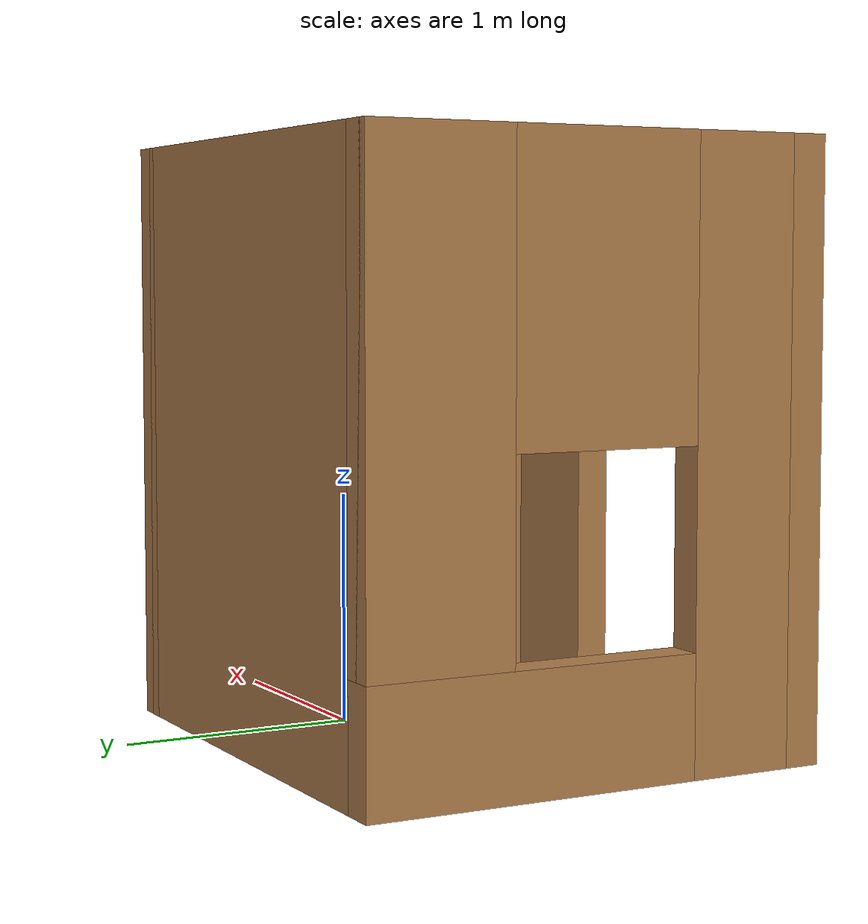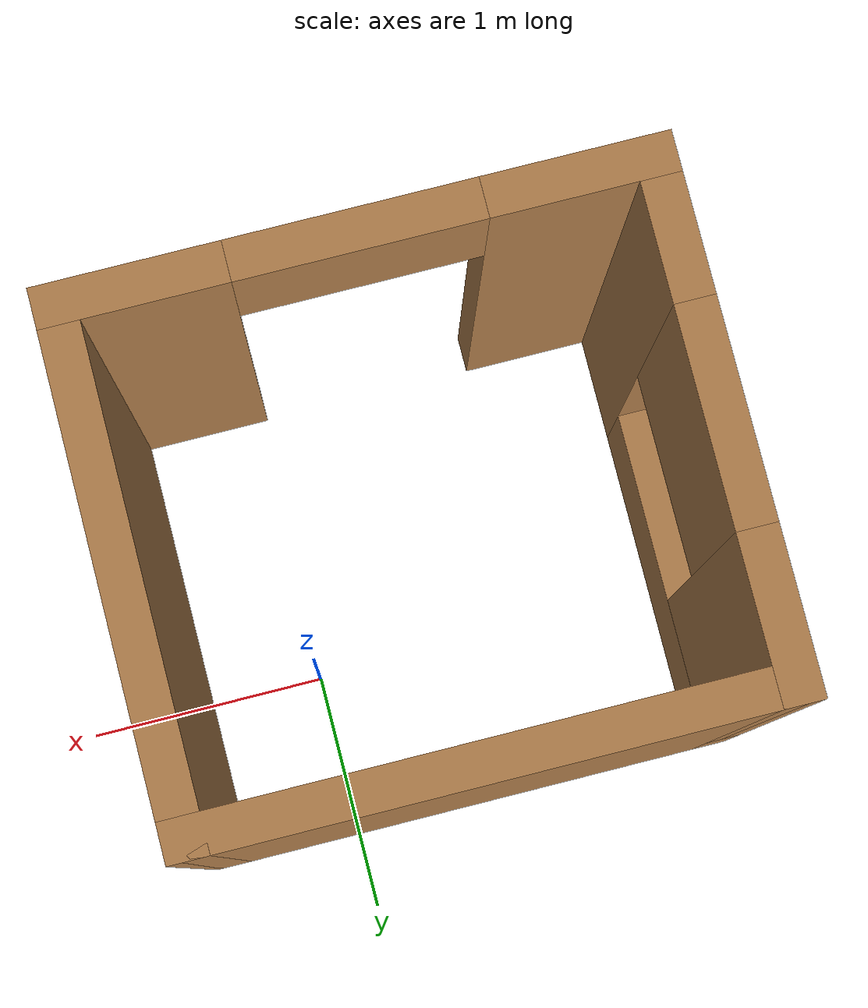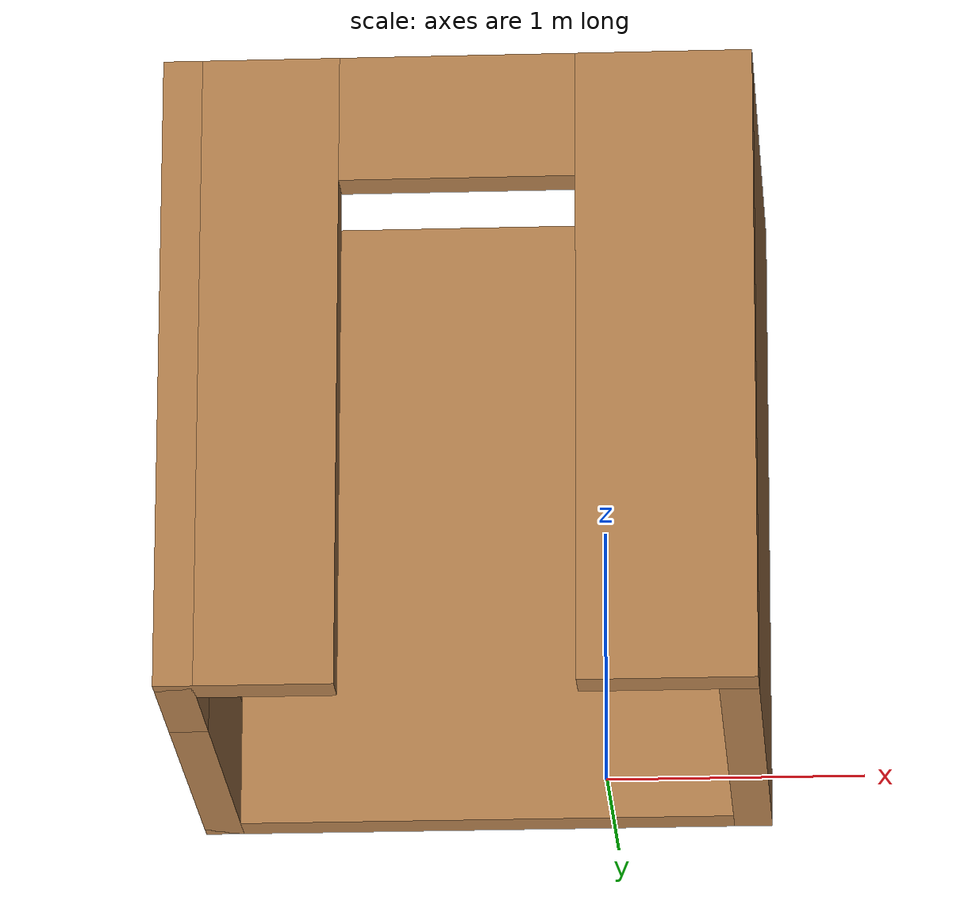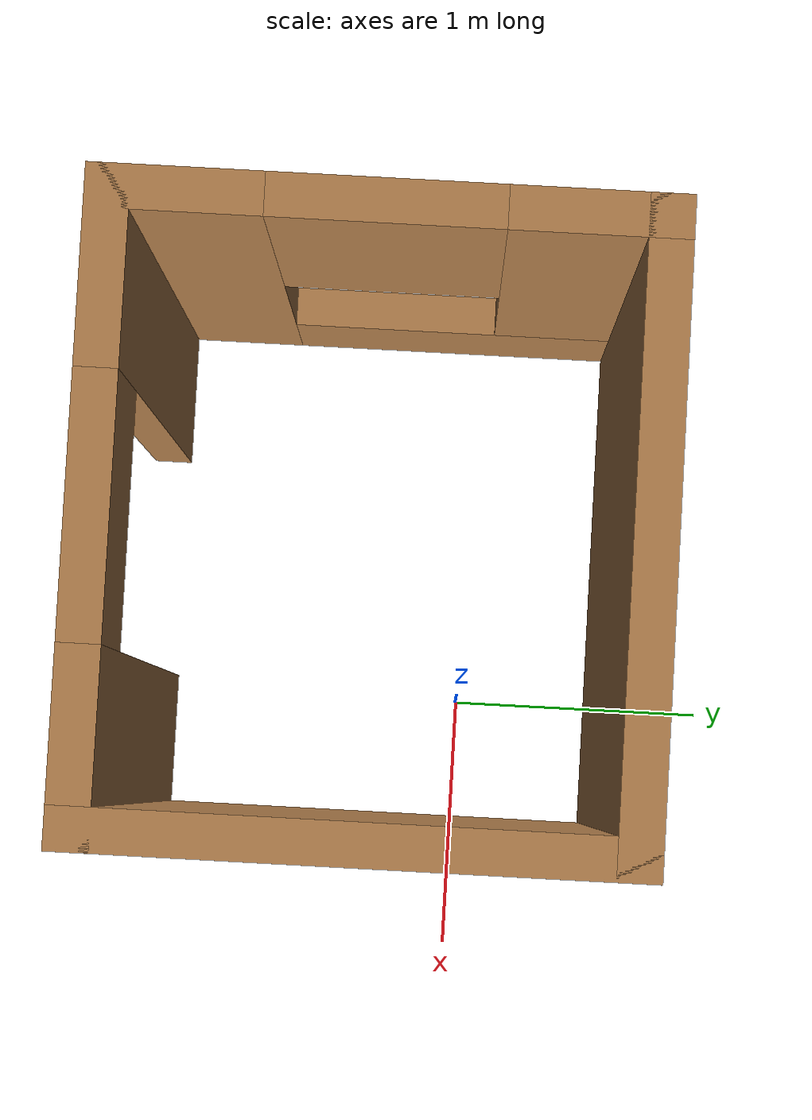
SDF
<?xml version='1.0'?>
<sdf version='1.6'>
  <model name='Untitled'>
    <pose frame=''>-0.5 -0.315 0 0 -0 0</pose>
    <link name='Wall_0'>
      <pose frame=''>-1.05 0 0 0 -0 1.5708</pose>
      <visual name='Wall_0_Visual_0'>
        <pose frame=''>-0.705313 0 1.25 0 -0 0</pose>
        <geometry>
          <box>
            <size>0.589374 0.15 2.5</size>
          </box>
        </geometry>
        <material>
          <script>
            <uri>file://media/materials/scripts/gazebo.material</uri>
            <name>Gazebo/Wood</name>
          </script>
          <ambient>1 1 1 1</ambient>
        </material>
      </visual>
      <collision name='Wall_0_Collision_0'>
        <geometry>
          <box>
            <size>0.589374 0.15 2.5</size>
          </box>
        </geometry>
        <pose frame=''>-0.705313 0 1.25 0 -0 0</pose>
      </collision>
      <visual name='Wall_0_Visual_1'>
        <pose frame=''>0.294687 0 0.25 0 -0 0</pose>
        <geometry>
          <box>
            <size>1.41063 0.15 0.5</size>
          </box>
        </geometry>
        <material>
          <script>
            <uri>file://media/materials/scripts/gazebo.material</uri>
            <name>Gazebo/Wood</name>
          </script>
          <ambient>1 1 1 1</ambient>
        </material>
      </visual>
      <collision name='Wall_0_Collision_1'>
        <geometry>
          <box>
            <size>1.41063 0.15 0.5</size>
          </box>
        </geometry>
        <pose frame=''>0.294687 0 0.25 0 -0 0</pose>
      </collision>
      <visual name='Wall_0_Visual_2'>
        <pose frame=''>0.694687 0 1.5 0 -0 0</pose>
        <geometry>
          <box>
            <size>0.610626 0.15 2</size>
          </box>
        </geometry>
        <material>
          <script>
            <uri>file://media/materials/scripts/gazebo.material</uri>
            <name>Gazebo/Wood</name>
          </script>
          <ambient>1 1 1 1</ambient>
        </material>
      </visual>
      <collision name='Wall_0_Collision_2'>
        <geometry>
          <box>
            <size>0.610626 0.15 2</size>
          </box>
        </geometry>
        <pose frame=''>0.694687 0 1.5 0 -0 0</pose>
      </collision>
      <visual name='Wall_0_Visual_3'>
        <pose frame=''>-0.010626 0 1.9 0 -0 0</pose>
        <geometry>
          <box>
            <size>0.8 0.15 1.2</size>
          </box>
        </geometry>
        <material>
          <script>
            <uri>file://media/materials/scripts/gazebo.material</uri>
            <name>Gazebo/Wood</name>
          </script>
          <ambient>1 1 1 1</ambient>
        </material>
      </visual>
      <collision name='Wall_0_Collision_3'>
        <geometry>
          <box>
            <size>0.8 0.15 1.2</size>
          </box>
        </geometry>
        <pose frame=''>-0.010626 0 1.9 0 -0 0</pose>
      </collision>
    </link>
    <link name='Wall_1'>
      <collision name='Wall_1_Collision'>
        <geometry>
          <box>
            <size>2.25 0.15 2.5</size>
          </box>
        </geometry>
        <pose frame=''>0 0 1.25 0 -0 0</pose>
      </collision>
      <visual name='Wall_1_Visual'>
        <pose frame=''>0 0 1.25 0 -0 0</pose>
        <geometry>
          <box>
            <size>2.25 0.15 2.5</size>
          </box>
        </geometry>
        <material>
          <script>
            <uri>file://media/materials/scripts/gazebo.material</uri>
            <name>Gazebo/Wood</name>
          </script>
          <ambient>1 1 1 1</ambient>
        </material>
      </visual>
      <pose frame=''>0 0.925 0 0 -0 0</pose>
    </link>
    <link name='Wall_2'>
      <collision name='Wall_2_Collision'>
        <geometry>
          <box>
            <size>2 0.15 2.5</size>
          </box>
        </geometry>
        <pose frame=''>0 0 1.25 0 -0 0</pose>
      </collision>
      <visual name='Wall_2_Visual'>
        <pose frame=''>0 0 1.25 0 -0 0</pose>
        <geometry>
          <box>
            <size>2 0.15 2.5</size>
          </box>
        </geometry>
        <material>
          <script>
            <uri>file://media/materials/scripts/gazebo.material</uri>
            <name>Gazebo/Wood</name>
          </script>
          <ambient>1 1 1 1</ambient>
        </material>
      </visual>
      <pose frame=''>1.05 0 0 0 0 -1.5708</pose>
    </link>
    <link name='Wall_3'>
      <pose frame=''>0 -0.925 0 0 -0 3.14159</pose>
      <visual name='Wall_3_Visual_0'>
        <pose frame=''>-0.7875 0 1.25 0 -0 0</pose>
        <geometry>
          <box>
            <size>0.675 0.15 2.5</size>
          </box>
        </geometry>
        <material>
          <script>
            <uri>file://media/materials/scripts/gazebo.material</uri>
            <name>Gazebo/Wood</name>
          </script>
          <ambient>0.435294 0.796078 0.67451 1</ambient>
        </material>
      </visual>
      <collision name='Wall_3_Collision_0'>
        <geometry>
          <box>
            <size>0.675 0.15 2.5</size>
          </box>
        </geometry>
        <pose frame=''>-0.7875 0 1.25 0 -0 0</pose>
      </collision>
      <visual name='Wall_3_Visual_1'>
        <pose frame=''>0.7875 0 1.25 0 -0 0</pose>
        <geometry>
          <box>
            <size>0.675 0.15 2.5</size>
          </box>
        </geometry>
        <material>
          <script>
            <uri>file://media/materials/scripts/gazebo.material</uri>
            <name>Gazebo/Wood</name>
          </script>
          <ambient>0.435294 0.796078 0.67451 1</ambient>
        </material>
      </visual>
      <collision name='Wall_3_Collision_1'>
        <geometry>
          <box>
            <size>0.675 0.15 2.5</size>
          </box>
        </geometry>
        <pose frame=''>0.7875 0 1.25 0 -0 0</pose>
      </collision>
      <visual name='Wall_3_Visual_2'>
        <pose frame=''>0 0 2.25 0 -0 0</pose>
        <geometry>
          <box>
            <size>0.9 0.15 0.5</size>
          </box>
        </geometry>
        <material>
          <script>
            <uri>file://media/materials/scripts/gazebo.material</uri>
            <name>Gazebo/Wood</name>
          </script>
          <ambient>0.435294 0.796078 0.67451 1</ambient>
        </material>
      </visual>
      <collision name='Wall_3_Collision_2'>
        <geometry>
          <box>
            <size>0.9 0.15 0.5</size>
          </box>
        </geometry>
        <pose frame=''>0 0 2.25 0 -0 0</pose>
      </collision>
    </link>
    <static>1</static>
  </model>
</sdf>
